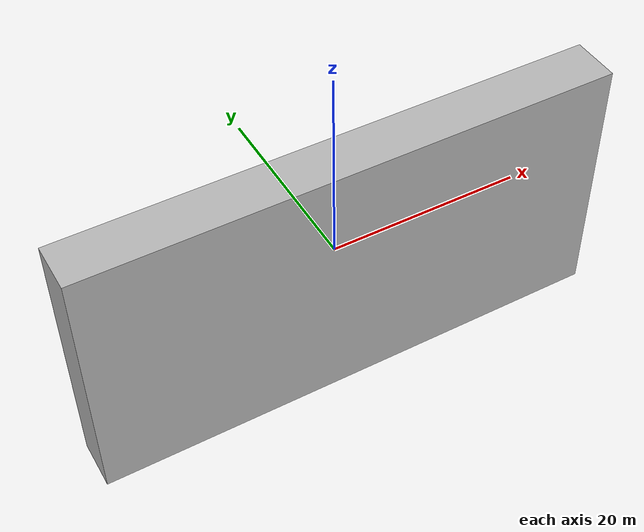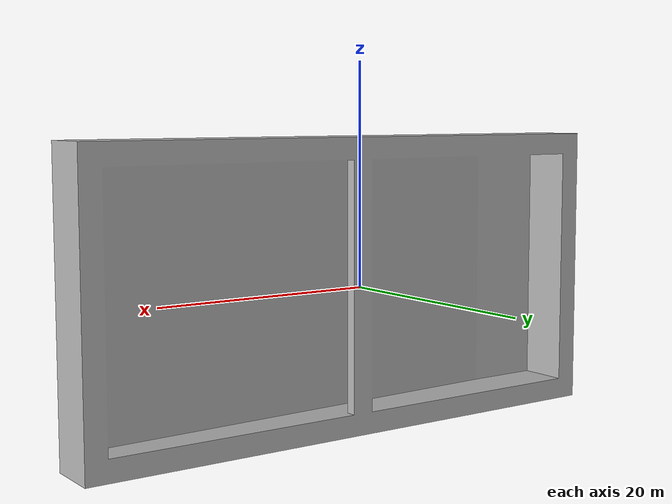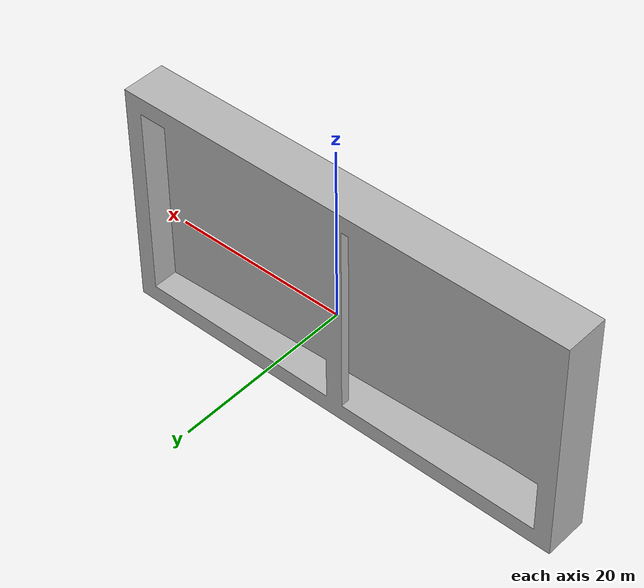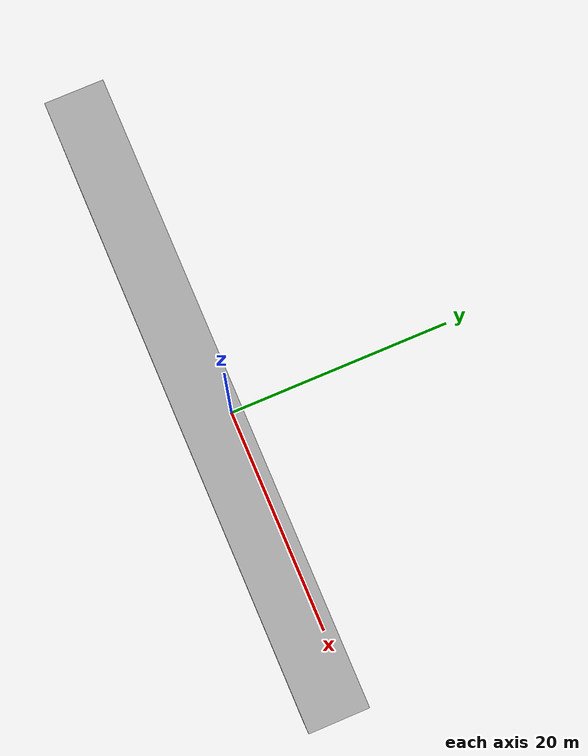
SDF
<?xml version="1.0" ?>
<sdf version="1.5">
  <model name="umd">
    <static>true</static>
    <link name="base_link">

      <collision name="collision">
        <pose>0 0 0 0 0 0</pose>
        <geometry>
          <mesh>
            <uri>model://umd/meshes/umd.dae</uri>
          </mesh>
        </geometry>
      </collision>

      <visual name="visual">
        <cast_shadows>true</cast_shadows>
        <pose>0 0 0 0 0 0</pose>
        <geometry>
          <mesh>
            <uri>model://umd/meshes/umd.dae</uri>
          </mesh>
        </geometry>
      </visual>
    </link>
  </model>
</sdf>
